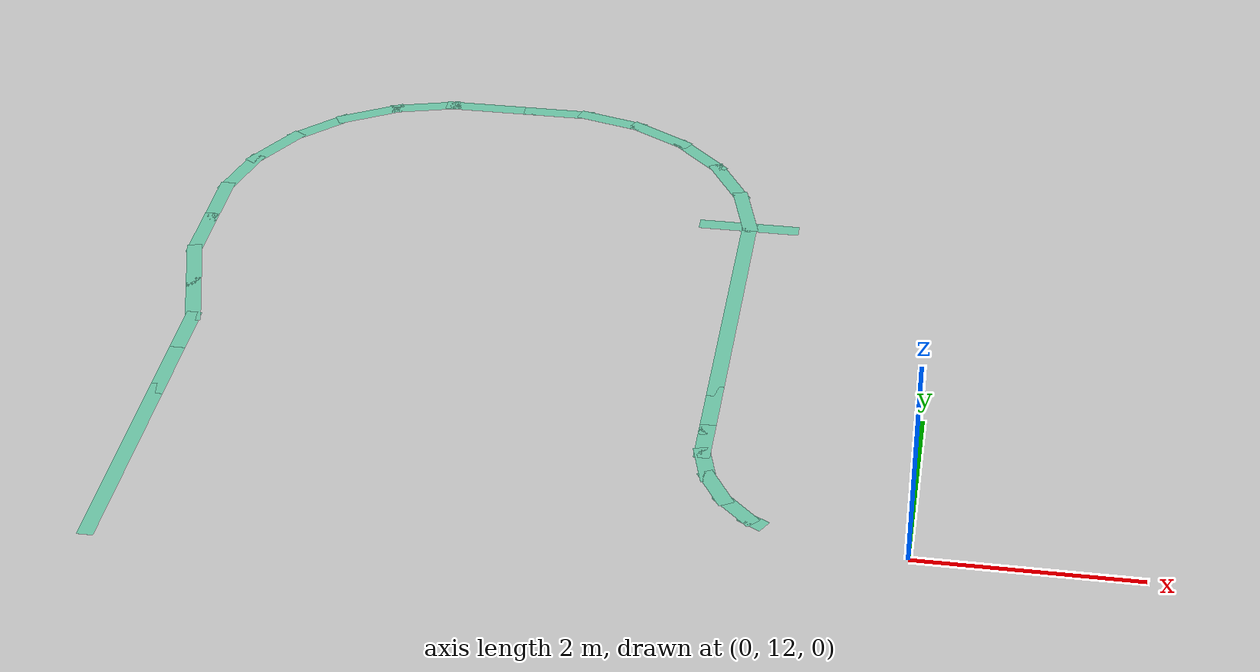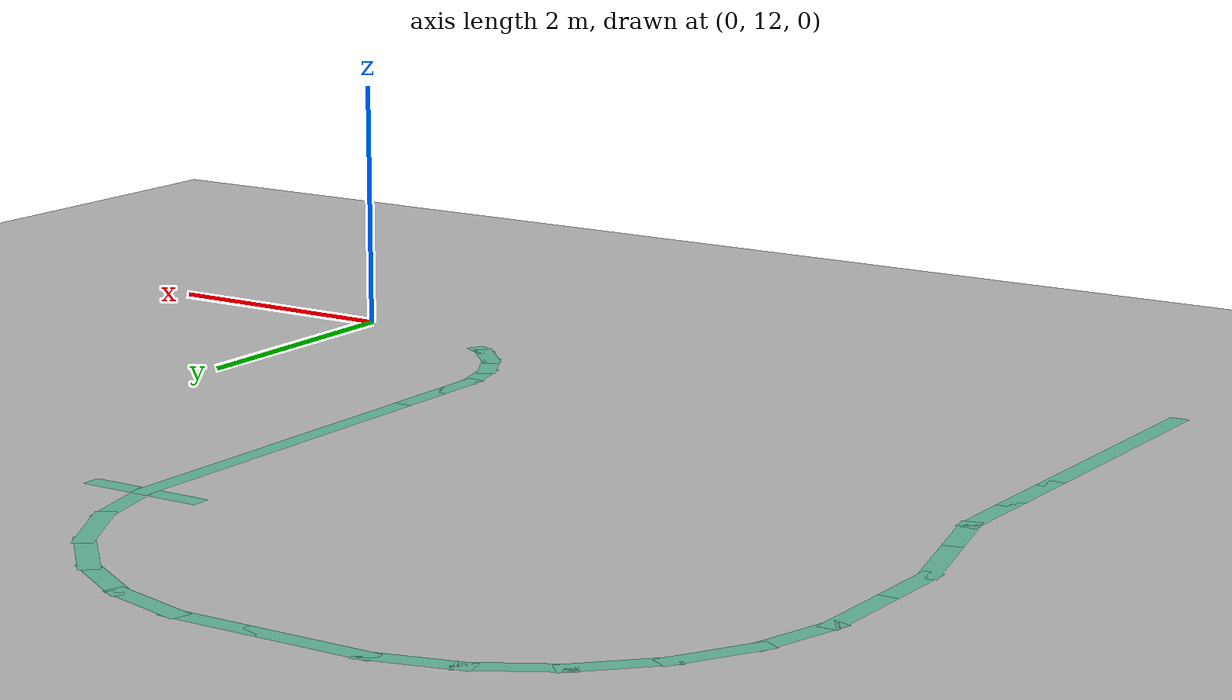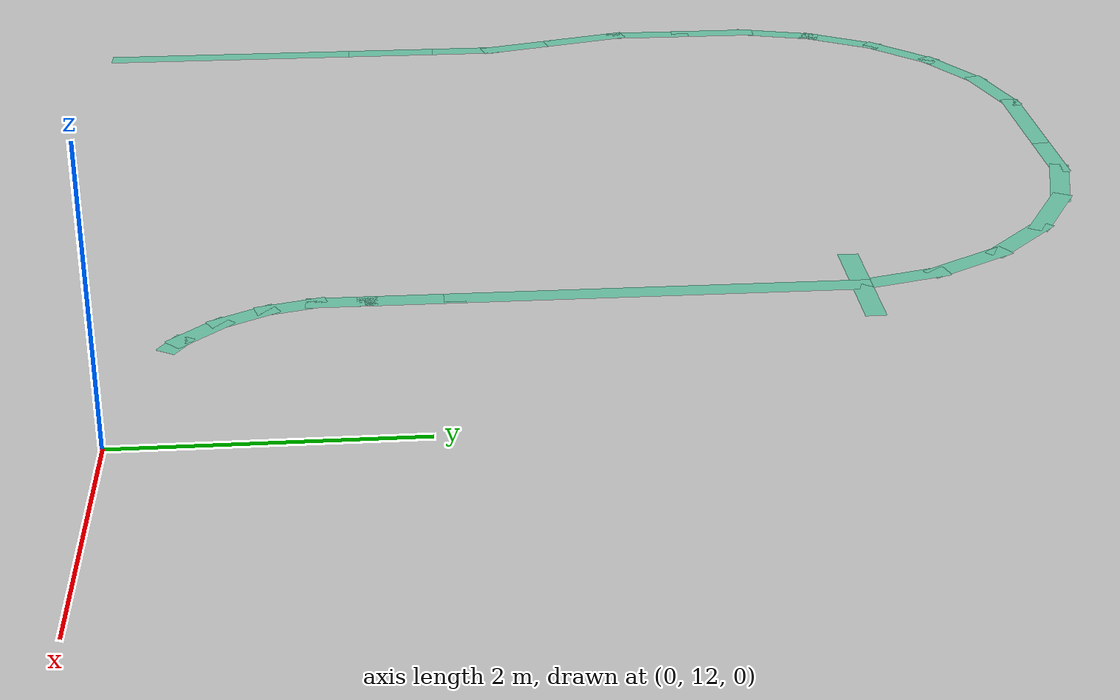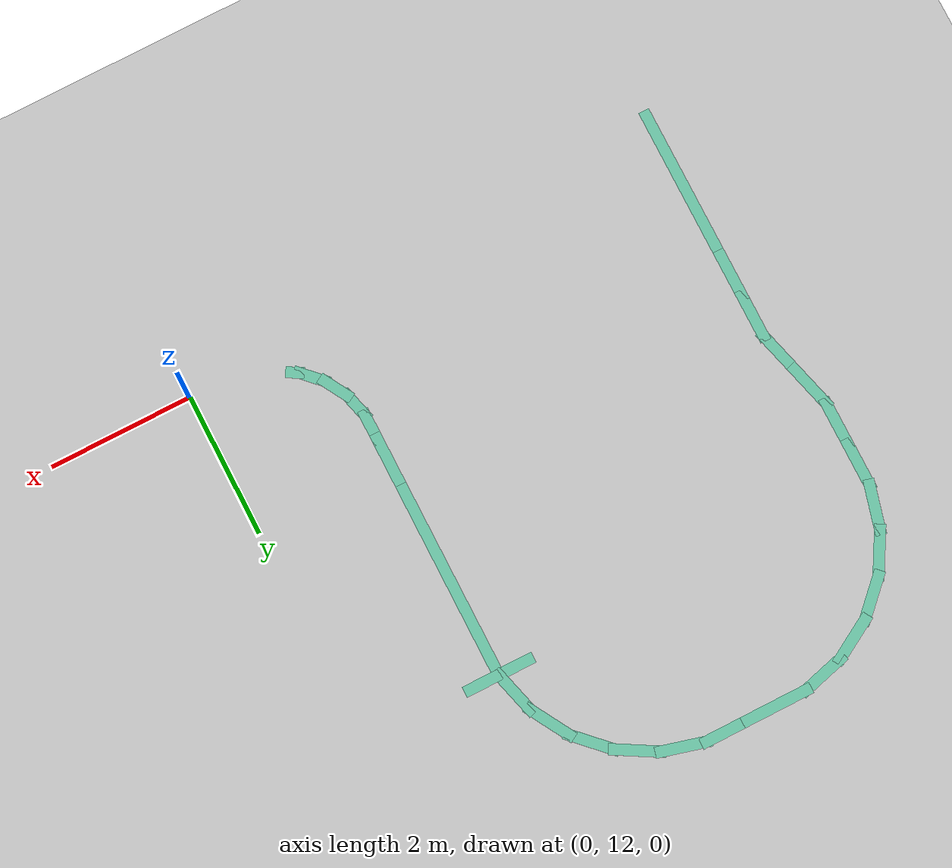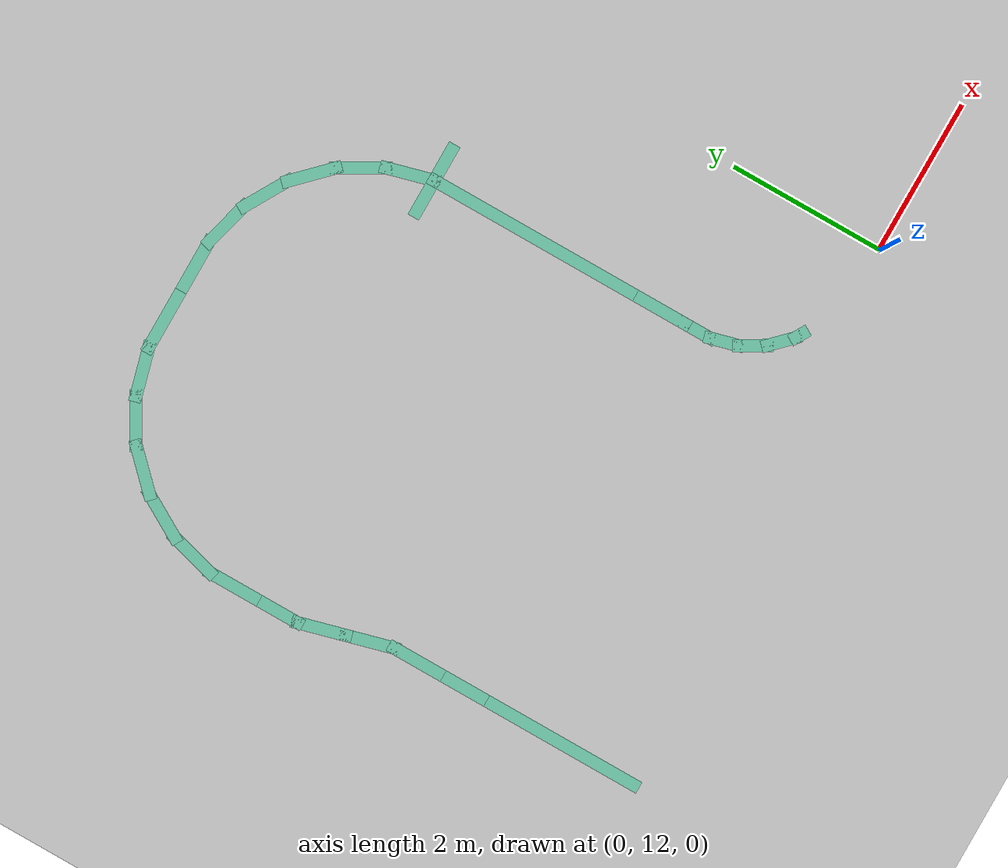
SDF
<sdf version="1.6">
 <world name="default">
  <model name="ground_plane">
   <static>1</static>
   <link name="link">
    <collision name="collision">
     <geometry><plane><normal>0 0 1</normal><size>100 100</size></plane></geometry>
     <surface><friction><ode><mu>100</mu><mu2>50</mu2></ode></friction></surface>
    </collision>
    <visual name="visual">
     <cast_shadows>0</cast_shadows>
     <geometry><plane><normal>0 0 1</normal><size>100 100</size></plane></geometry>
     <material>
      <script><uri>file://media/materials/scripts/gazebo.material</uri><name>Gazebo/Grey</name></script>
     </material>
    </visual>
   </link>
  </model>
  <model name="pomdp_path">
   <link name="Wall_167">
    <pose>-7.13559 -2.82723 0 0 0 -0.523599</pose>
    <visual name="Wall_167_Visual">
     <pose>0 0 0.0001 0 -0 0</pose>
     <geometry><box><size>0.25 0.15 0</size></box></geometry>
     <material>
      <script><uri>file://media/materials/scripts/gazebo.material</uri><name>Gazebo/Grey</name></script>
      <ambient>0.435294 0.796078 0.67451 1</ambient>
      <shader type="pixel"/>
     </material>
     <meta><layer>0</layer></meta>
    </visual>
    <collision name="Wall_167_Collision">
     <pose>0 0 0.0001 0 -0 0</pose>
     <geometry><box><size>0.25 0.15 0</size></box></geometry>
     <surface>
      <friction>
       <ode><mu>1</mu><mu2>1</mu2><fdir1>0 0 0</fdir1><slip1>0</slip1><slip2>0</slip2></ode>
       <torsional>
        <coefficient>1</coefficient>
        <patch_radius>0</patch_radius>
        <surface_radius>0</surface_radius>
        <use_patch_radius>1</use_patch_radius>
        <ode><slip>0</slip></ode>
       </torsional>
      </friction>
      <bounce><restitution_coefficient>0</restitution_coefficient><threshold>1e+06</threshold></bounce>
      <contact>
       <collide_without_contact>0</collide_without_contact>
       <collide_without_contact_bitmask>1</collide_without_contact_bitmask>
       <collide_bitmask>1</collide_bitmask>
       <ode>
        <soft_cfm>0</soft_cfm>
        <soft_erp>0.2</soft_erp>
        <kp>1e+13</kp>
        <kd>1</kd>
        <max_vel>0.01</max_vel>
        <min_depth>0</min_depth>
       </ode>
       <bullet>
        <split_impulse>1</split_impulse>
        <split_impulse_penetration_threshold>-0.01</split_impulse_penetration_threshold>
        <soft_cfm>0</soft_cfm>
        <soft_erp>0.2</soft_erp>
        <kp>1e+13</kp>
        <kd>1</kd>
       </bullet>
      </contact>
     </surface>
    </collision>
   </link>
   <link name="Wall_168">
    <pose>-6.96855 -2.97598 0 0 0 -0.785398</pose>
    <visual name="Wall_168_Visual">
     <pose>0 0 0.0001 0 -0 0</pose>
     <geometry><box><size>0.5 0.15 0</size></box></geometry>
     <material>
      <script><uri>file://media/materials/scripts/gazebo.material</uri><name>Gazebo/Grey</name></script>
      <ambient>0.435294 0.796078 0.67451 1</ambient>
      <shader type="pixel"/>
     </material>
     <meta><layer>0</layer></meta>
    </visual>
    <collision name="Wall_168_Collision">
     <pose>0 0 0.0001 0 -0 0</pose>
     <geometry><box><size>0.5 0.15 0</size></box></geometry>
     <surface>
      <friction>
       <ode><mu>1</mu><mu2>1</mu2><fdir1>0 0 0</fdir1><slip1>0</slip1><slip2>0</slip2></ode>
       <torsional>
        <coefficient>1</coefficient>
        <patch_radius>0</patch_radius>
        <surface_radius>0</surface_radius>
        <use_patch_radius>1</use_patch_radius>
        <ode><slip>0</slip></ode>
       </torsional>
      </friction>
      <bounce><restitution_coefficient>0</restitution_coefficient><threshold>1e+06</threshold></bounce>
      <contact>
       <collide_without_contact>0</collide_without_contact>
       <collide_without_contact_bitmask>1</collide_without_contact_bitmask>
       <collide_bitmask>1</collide_bitmask>
       <ode>
        <soft_cfm>0</soft_cfm>
        <soft_erp>0.2</soft_erp>
        <kp>1e+13</kp>
        <kd>1</kd>
        <max_vel>0.01</max_vel>
        <min_depth>0</min_depth>
       </ode>
       <bullet>
        <split_impulse>1</split_impulse>
        <split_impulse_penetration_threshold>-0.01</split_impulse_penetration_threshold>
        <soft_cfm>0</soft_cfm>
        <soft_erp>0.2</soft_erp>
        <kp>1e+13</kp>
        <kd>1</kd>
       </bullet>
      </contact>
     </surface>
    </collision>
   </link>
   <link name="Wall_169">
    <pose>-6.7573 -3.25127 0 0 0 -1.0472</pose>
    <visual name="Wall_169_Visual">
     <pose>0 0 0.0001 0 -0 0</pose>
     <geometry><box><size>0.5 0.15 0</size></box></geometry>
     <material>
      <script><uri>file://media/materials/scripts/gazebo.material</uri><name>Gazebo/Grey</name></script>
      <ambient>0.435294 0.796078 0.67451 1</ambient>
      <shader type="pixel"/>
     </material>
     <meta><layer>0</layer></meta>
    </visual>
    <collision name="Wall_169_Collision">
     <pose>0 0 0.0001 0 -0 0</pose>
     <geometry><box><size>0.5 0.15 0</size></box></geometry>
     <surface>
      <friction>
       <ode><mu>1</mu><mu2>1</mu2><fdir1>0 0 0</fdir1><slip1>0</slip1><slip2>0</slip2></ode>
       <torsional>
        <coefficient>1</coefficient>
        <patch_radius>0</patch_radius>
        <surface_radius>0</surface_radius>
        <use_patch_radius>1</use_patch_radius>
        <ode><slip>0</slip></ode>
       </torsional>
      </friction>
      <bounce><restitution_coefficient>0</restitution_coefficient><threshold>1e+06</threshold></bounce>
      <contact>
       <collide_without_contact>0</collide_without_contact>
       <collide_without_contact_bitmask>1</collide_without_contact_bitmask>
       <collide_bitmask>1</collide_bitmask>
       <ode>
        <soft_cfm>0</soft_cfm>
        <soft_erp>0.2</soft_erp>
        <kp>1e+13</kp>
        <kd>1</kd>
        <max_vel>0.01</max_vel>
        <min_depth>0</min_depth>
       </ode>
       <bullet>
        <split_impulse>1</split_impulse>
        <split_impulse_penetration_threshold>-0.01</split_impulse_penetration_threshold>
        <soft_cfm>0</soft_cfm>
        <soft_erp>0.2</soft_erp>
        <kp>1e+13</kp>
        <kd>1</kd>
       </bullet>
      </contact>
     </surface>
    </collision>
   </link>
   <link name="Wall_170">
    <pose>-6.62451 -3.57186 0 0 0 -1.309</pose>
    <visual name="Wall_170_Visual">
     <pose>0 0 0.0001 0 -0 0</pose>
     <geometry><box><size>0.5 0.15 0</size></box></geometry>
     <material>
      <script><uri>file://media/materials/scripts/gazebo.material</uri><name>Gazebo/Grey</name></script>
      <ambient>0.435294 0.796078 0.67451 1</ambient>
      <shader type="pixel"/>
     </material>
     <meta><layer>0</layer></meta>
    </visual>
    <collision name="Wall_170_Collision">
     <pose>0 0 0.0001 0 -0 0</pose>
     <geometry><box><size>0.5 0.15 0</size></box></geometry>
     <surface>
      <friction>
       <ode><mu>1</mu><mu2>1</mu2><fdir1>0 0 0</fdir1><slip1>0</slip1><slip2>0</slip2></ode>
       <torsional>
        <coefficient>1</coefficient>
        <patch_radius>0</patch_radius>
        <surface_radius>0</surface_radius>
        <use_patch_radius>1</use_patch_radius>
        <ode><slip>0</slip></ode>
       </torsional>
      </friction>
      <bounce><restitution_coefficient>0</restitution_coefficient><threshold>1e+06</threshold></bounce>
      <contact>
       <collide_without_contact>0</collide_without_contact>
       <collide_without_contact_bitmask>1</collide_without_contact_bitmask>
       <collide_bitmask>1</collide_bitmask>
       <ode>
        <soft_cfm>0</soft_cfm>
        <soft_erp>0.2</soft_erp>
        <kp>1e+13</kp>
        <kd>1</kd>
        <max_vel>0.01</max_vel>
        <min_depth>0</min_depth>
       </ode>
       <bullet>
        <split_impulse>1</split_impulse>
        <split_impulse_penetration_threshold>-0.01</split_impulse_penetration_threshold>
        <soft_cfm>0</soft_cfm>
        <soft_erp>0.2</soft_erp>
        <kp>1e+13</kp>
        <kd>1</kd>
       </bullet>
      </contact>
     </surface>
    </collision>
   </link>
   <link name="Wall_171">
    <pose>-6.57922 -3.9159 0 0 0 -1.5708</pose>
    <visual name="Wall_171_Visual">
     <pose>0 0 0.0001 0 -0 0</pose>
     <geometry><box><size>0.5 0.15 0</size></box></geometry>
     <material>
      <script><uri>file://media/materials/scripts/gazebo.material</uri><name>Gazebo/Grey</name></script>
      <ambient>0.435294 0.796078 0.67451 1</ambient>
      <shader type="pixel"/>
     </material>
     <meta><layer>0</layer></meta>
    </visual>
    <collision name="Wall_171_Collision">
     <pose>0 0 0.0001 0 -0 0</pose>
     <geometry><box><size>0.5 0.15 0</size></box></geometry>
     <surface>
      <friction>
       <ode><mu>1</mu><mu2>1</mu2><fdir1>0 0 0</fdir1><slip1>0</slip1><slip2>0</slip2></ode>
       <torsional>
        <coefficient>1</coefficient>
        <patch_radius>0</patch_radius>
        <surface_radius>0</surface_radius>
        <use_patch_radius>1</use_patch_radius>
        <ode><slip>0</slip></ode>
       </torsional>
      </friction>
      <bounce><restitution_coefficient>0</restitution_coefficient><threshold>1e+06</threshold></bounce>
      <contact>
       <collide_without_contact>0</collide_without_contact>
       <collide_without_contact_bitmask>1</collide_without_contact_bitmask>
       <collide_bitmask>1</collide_bitmask>
       <ode>
        <soft_cfm>0</soft_cfm>
        <soft_erp>0.2</soft_erp>
        <kp>1e+13</kp>
        <kd>1</kd>
        <max_vel>0.01</max_vel>
        <min_depth>0</min_depth>
       </ode>
       <bullet>
        <split_impulse>1</split_impulse>
        <split_impulse_penetration_threshold>-0.01</split_impulse_penetration_threshold>
        <soft_cfm>0</soft_cfm>
        <soft_erp>0.2</soft_erp>
        <kp>1e+13</kp>
        <kd>1</kd>
       </bullet>
      </contact>
     </surface>
    </collision>
   </link>
   <link name="Wall_172">
    <pose>-6.57922 -4.3909 0 0 0 -1.5708</pose>
    <visual name="Wall_172_Visual">
     <pose>0 0 0.0001 0 -0 0</pose>
     <geometry><box><size>0.75 0.15 0</size></box></geometry>
     <material>
      <script><uri>file://media/materials/scripts/gazebo.material</uri><name>Gazebo/Grey</name></script>
      <ambient>0.435294 0.796078 0.67451 1</ambient>
      <shader type="pixel"/>
     </material>
     <meta><layer>0</layer></meta>
    </visual>
    <collision name="Wall_172_Collision">
     <pose>0 0 0.0001 0 -0 0</pose>
     <geometry><box><size>0.75 0.15 0</size></box></geometry>
     <surface>
      <friction>
       <ode><mu>1</mu><mu2>1</mu2><fdir1>0 0 0</fdir1><slip1>0</slip1><slip2>0</slip2></ode>
       <torsional>
        <coefficient>1</coefficient>
        <patch_radius>0</patch_radius>
        <surface_radius>0</surface_radius>
        <use_patch_radius>1</use_patch_radius>
        <ode><slip>0</slip></ode>
       </torsional>
      </friction>
      <bounce><restitution_coefficient>0</restitution_coefficient><threshold>1e+06</threshold></bounce>
      <contact>
       <collide_without_contact>0</collide_without_contact>
       <collide_without_contact_bitmask>1</collide_without_contact_bitmask>
       <collide_bitmask>1</collide_bitmask>
       <ode>
        <soft_cfm>0</soft_cfm>
        <soft_erp>0.2</soft_erp>
        <kp>1e+13</kp>
        <kd>1</kd>
        <max_vel>0.01</max_vel>
        <min_depth>0</min_depth>
       </ode>
       <bullet>
        <split_impulse>1</split_impulse>
        <split_impulse_penetration_threshold>-0.01</split_impulse_penetration_threshold>
        <soft_cfm>0</soft_cfm>
        <soft_erp>0.2</soft_erp>
        <kp>1e+13</kp>
        <kd>1</kd>
       </bullet>
      </contact>
     </surface>
    </collision>
   </link>
   <link name="Wall_176">
    <pose>-6.57922 -6.1159 0 0 0 -1.5708</pose>
    <visual name="Wall_176_Visual">
     <pose>0 0 0.0001 0 -0 0</pose>
     <geometry><box><size>3 0.15 0</size></box></geometry>
     <material>
      <script><uri>file://media/materials/scripts/gazebo.material</uri><name>Gazebo/Grey</name></script>
      <ambient>0.435294 0.796078 0.67451 1</ambient>
      <shader type="pixel"/>
     </material>
     <meta><layer>0</layer></meta>
    </visual>
    <collision name="Wall_176_Collision">
     <pose>0 0 0.0001 0 -0 0</pose>
     <geometry><box><size>3 0.15 0</size></box></geometry>
     <surface>
      <friction>
       <ode><mu>1</mu><mu2>1</mu2><fdir1>0 0 0</fdir1><slip1>0</slip1><slip2>0</slip2></ode>
       <torsional>
        <coefficient>1</coefficient>
        <patch_radius>0</patch_radius>
        <surface_radius>0</surface_radius>
        <use_patch_radius>1</use_patch_radius>
        <ode><slip>0</slip></ode>
       </torsional>
      </friction>
      <bounce><restitution_coefficient>0</restitution_coefficient><threshold>1e+06</threshold></bounce>
      <contact>
       <collide_without_contact>0</collide_without_contact>
       <collide_without_contact_bitmask>1</collide_without_contact_bitmask>
       <collide_bitmask>1</collide_bitmask>
       <ode>
        <soft_cfm>0</soft_cfm>
        <soft_erp>0.2</soft_erp>
        <kp>1e+13</kp>
        <kd>1</kd>
        <max_vel>0.01</max_vel>
        <min_depth>0</min_depth>
       </ode>
       <bullet>
        <split_impulse>1</split_impulse>
        <split_impulse_penetration_threshold>-0.01</split_impulse_penetration_threshold>
        <soft_cfm>0</soft_cfm>
        <soft_erp>0.2</soft_erp>
        <kp>1e+13</kp>
        <kd>1</kd>
       </bullet>
      </contact>
     </surface>
    </collision>
   </link>
   <link name="Wall_177">
    <pose>-6.50157 -7.83068 0 0 0 -1.309</pose>
    <visual name="Wall_177_Visual">
     <pose>0 0 0.0001 0 -0 0</pose>
     <geometry><box><size>0.75 0.15 0</size></box></geometry>
     <material>
      <script><uri>file://media/materials/scripts/gazebo.material</uri><name>Gazebo/Grey</name></script>
      <ambient>0.435294 0.796078 0.67451 1</ambient>
      <shader type="pixel"/>
     </material>
     <meta><layer>0</layer></meta>
    </visual>
    <collision name="Wall_177_Collision">
     <pose>0 0 0.0001 0 -0 0</pose>
     <geometry><box><size>0.75 0.15 0</size></box></geometry>
     <surface>
      <friction>
       <ode><mu>1</mu><mu2>1</mu2><fdir1>0 0 0</fdir1><slip1>0</slip1><slip2>0</slip2></ode>
       <torsional>
        <coefficient>1</coefficient>
        <patch_radius>0</patch_radius>
        <surface_radius>0</surface_radius>
        <use_patch_radius>1</use_patch_radius>
        <ode><slip>0</slip></ode>
       </torsional>
      </friction>
      <bounce><restitution_coefficient>0</restitution_coefficient><threshold>1e+06</threshold></bounce>
      <contact>
       <collide_without_contact>0</collide_without_contact>
       <collide_without_contact_bitmask>1</collide_without_contact_bitmask>
       <collide_bitmask>1</collide_bitmask>
       <ode>
        <soft_cfm>0</soft_cfm>
        <soft_erp>0.2</soft_erp>
        <kp>1e+13</kp>
        <kd>1</kd>
        <max_vel>0.01</max_vel>
        <min_depth>0</min_depth>
       </ode>
       <bullet>
        <split_impulse>1</split_impulse>
        <split_impulse_penetration_threshold>-0.01</split_impulse_penetration_threshold>
        <soft_cfm>0</soft_cfm>
        <soft_erp>0.2</soft_erp>
        <kp>1e+13</kp>
        <kd>1</kd>
       </bullet>
      </contact>
     </surface>
    </collision>
   </link>
   <link name="Wall_178">
    <pose>-6.27392 -8.38026 0 0 0 -1.0472</pose>
    <visual name="Wall_178_Visual">
     <pose>0 0 0.0001 0 -0 0</pose>
     <geometry><box><size>0.75 0.15 0</size></box></geometry>
     <material>
      <script><uri>file://media/materials/scripts/gazebo.material</uri><name>Gazebo/Grey</name></script>
      <ambient>0.435294 0.796078 0.67451 1</ambient>
      <shader type="pixel"/>
     </material>
     <meta><layer>0</layer></meta>
    </visual>
    <collision name="Wall_178_Collision">
     <pose>0 0 0.0001 0 -0 0</pose>
     <geometry><box><size>0.75 0.15 0</size></box></geometry>
     <surface>
      <friction>
       <ode><mu>1</mu><mu2>1</mu2><fdir1>0 0 0</fdir1><slip1>0</slip1><slip2>0</slip2></ode>
       <torsional>
        <coefficient>1</coefficient>
        <patch_radius>0</patch_radius>
        <surface_radius>0</surface_radius>
        <use_patch_radius>1</use_patch_radius>
        <ode><slip>0</slip></ode>
       </torsional>
      </friction>
      <bounce><restitution_coefficient>0</restitution_coefficient><threshold>1e+06</threshold></bounce>
      <contact>
       <collide_without_contact>0</collide_without_contact>
       <collide_without_contact_bitmask>1</collide_without_contact_bitmask>
       <collide_bitmask>1</collide_bitmask>
       <ode>
        <soft_cfm>0</soft_cfm>
        <soft_erp>0.2</soft_erp>
        <kp>1e+13</kp>
        <kd>1</kd>
        <max_vel>0.01</max_vel>
        <min_depth>0</min_depth>
       </ode>
       <bullet>
        <split_impulse>1</split_impulse>
        <split_impulse_penetration_threshold>-0.01</split_impulse_penetration_threshold>
        <soft_cfm>0</soft_cfm>
        <soft_erp>0.2</soft_erp>
        <kp>1e+13</kp>
        <kd>1</kd>
       </bullet>
      </contact>
     </surface>
    </collision>
   </link>
   <link name="Wall_179">
    <pose>-5.91179 -8.8522 0 0 0 -0.785398</pose>
    <visual name="Wall_179_Visual">
     <pose>0 0 0.0001 0 -0 0</pose>
     <geometry><box><size>0.75 0.15 0</size></box></geometry>
     <material>
      <script><uri>file://media/materials/scripts/gazebo.material</uri><name>Gazebo/Grey</name></script>
      <ambient>0.435294 0.796078 0.67451 1</ambient>
      <shader type="pixel"/>
     </material>
     <meta><layer>0</layer></meta>
    </visual>
    <collision name="Wall_179_Collision">
     <pose>0 0 0.0001 0 -0 0</pose>
     <geometry><box><size>0.75 0.15 0</size></box></geometry>
     <surface>
      <friction>
       <ode><mu>1</mu><mu2>1</mu2><fdir1>0 0 0</fdir1><slip1>0</slip1><slip2>0</slip2></ode>
       <torsional>
        <coefficient>1</coefficient>
        <patch_radius>0</patch_radius>
        <surface_radius>0</surface_radius>
        <use_patch_radius>1</use_patch_radius>
        <ode><slip>0</slip></ode>
       </torsional>
      </friction>
      <bounce><restitution_coefficient>0</restitution_coefficient><threshold>1e+06</threshold></bounce>
      <contact>
       <collide_without_contact>0</collide_without_contact>
       <collide_without_contact_bitmask>1</collide_without_contact_bitmask>
       <collide_bitmask>1</collide_bitmask>
       <ode>
        <soft_cfm>0</soft_cfm>
        <soft_erp>0.2</soft_erp>
        <kp>1e+13</kp>
        <kd>1</kd>
        <max_vel>0.01</max_vel>
        <min_depth>0</min_depth>
       </ode>
       <bullet>
        <split_impulse>1</split_impulse>
        <split_impulse_penetration_threshold>-0.01</split_impulse_penetration_threshold>
        <soft_cfm>0</soft_cfm>
        <soft_erp>0.2</soft_erp>
        <kp>1e+13</kp>
        <kd>1</kd>
       </bullet>
      </contact>
     </surface>
    </collision>
   </link>
   <link name="Wall_180">
    <pose>-5.43985 -9.21434 0 0 0 -0.523599</pose>
    <visual name="Wall_180_Visual">
     <pose>0 0 0.0001 0 -0 0</pose>
     <geometry><box><size>0.75 0.15 0</size></box></geometry>
     <material>
      <script><uri>file://media/materials/scripts/gazebo.material</uri><name>Gazebo/Grey</name></script>
      <ambient>0.435294 0.796078 0.67451 1</ambient>
      <shader type="pixel"/>
     </material>
     <meta><layer>0</layer></meta>
    </visual>
    <collision name="Wall_180_Collision">
     <pose>0 0 0.0001 0 -0 0</pose>
     <geometry><box><size>0.75 0.15 0</size></box></geometry>
     <surface>
      <friction>
       <ode><mu>1</mu><mu2>1</mu2><fdir1>0 0 0</fdir1><slip1>0</slip1><slip2>0</slip2></ode>
       <torsional>
        <coefficient>1</coefficient>
        <patch_radius>0</patch_radius>
        <surface_radius>0</surface_radius>
        <use_patch_radius>1</use_patch_radius>
        <ode><slip>0</slip></ode>
       </torsional>
      </friction>
      <bounce><restitution_coefficient>0</restitution_coefficient><threshold>1e+06</threshold></bounce>
      <contact>
       <collide_without_contact>0</collide_without_contact>
       <collide_without_contact_bitmask>1</collide_without_contact_bitmask>
       <collide_bitmask>1</collide_bitmask>
       <ode>
        <soft_cfm>0</soft_cfm>
        <soft_erp>0.2</soft_erp>
        <kp>1e+13</kp>
        <kd>1</kd>
        <max_vel>0.01</max_vel>
        <min_depth>0</min_depth>
       </ode>
       <bullet>
        <split_impulse>1</split_impulse>
        <split_impulse_penetration_threshold>-0.01</split_impulse_penetration_threshold>
        <soft_cfm>0</soft_cfm>
        <soft_erp>0.2</soft_erp>
        <kp>1e+13</kp>
        <kd>1</kd>
       </bullet>
      </contact>
     </surface>
    </collision>
   </link>
   <link name="Wall_181">
    <pose>-4.89027 -9.44198 0 0 0 -0.261799</pose>
    <visual name="Wall_181_Visual">
     <pose>0 0 0.0001 0 -0 0</pose>
     <geometry><box><size>0.75 0.15 0</size></box></geometry>
     <material>
      <script><uri>file://media/materials/scripts/gazebo.material</uri><name>Gazebo/Grey</name></script>
      <ambient>0.435294 0.796078 0.67451 1</ambient>
      <shader type="pixel"/>
     </material>
     <meta><layer>0</layer></meta>
    </visual>
    <collision name="Wall_181_Collision">
     <pose>0 0 0.0001 0 -0 0</pose>
     <geometry><box><size>0.75 0.15 0</size></box></geometry>
     <surface>
      <friction>
       <ode><mu>1</mu><mu2>1</mu2><fdir1>0 0 0</fdir1><slip1>0</slip1><slip2>0</slip2></ode>
       <torsional>
        <coefficient>1</coefficient>
        <patch_radius>0</patch_radius>
        <surface_radius>0</surface_radius>
        <use_patch_radius>1</use_patch_radius>
        <ode><slip>0</slip></ode>
       </torsional>
      </friction>
      <bounce><restitution_coefficient>0</restitution_coefficient><threshold>1e+06</threshold></bounce>
      <contact>
       <collide_without_contact>0</collide_without_contact>
       <collide_without_contact_bitmask>1</collide_without_contact_bitmask>
       <collide_bitmask>1</collide_bitmask>
       <ode>
        <soft_cfm>0</soft_cfm>
        <soft_erp>0.2</soft_erp>
        <kp>1e+13</kp>
        <kd>1</kd>
        <max_vel>0.01</max_vel>
        <min_depth>0</min_depth>
       </ode>
       <bullet>
        <split_impulse>1</split_impulse>
        <split_impulse_penetration_threshold>-0.01</split_impulse_penetration_threshold>
        <soft_cfm>0</soft_cfm>
        <soft_erp>0.2</soft_erp>
        <kp>1e+13</kp>
        <kd>1</kd>
       </bullet>
      </contact>
     </surface>
    </collision>
   </link>
   <link name="Wall_182">
    <pose>-4.30049 -9.51963 0 0 -0 0</pose>
    <visual name="Wall_182_Visual">
     <pose>0 0 0.0001 0 -0 0</pose>
     <geometry><box><size>0.75 0.15 0</size></box></geometry>
     <material>
      <script><uri>file://media/materials/scripts/gazebo.material</uri><name>Gazebo/Grey</name></script>
      <ambient>0.435294 0.796078 0.67451 1</ambient>
      <shader type="pixel"/>
     </material>
     <meta><layer>0</layer></meta>
    </visual>
    <collision name="Wall_182_Collision">
     <pose>0 0 0.0001 0 -0 0</pose>
     <geometry><box><size>0.75 0.15 0</size></box></geometry>
     <surface>
      <friction>
       <ode><mu>1</mu><mu2>1</mu2><fdir1>0 0 0</fdir1><slip1>0</slip1><slip2>0</slip2></ode>
       <torsional>
        <coefficient>1</coefficient>
        <patch_radius>0</patch_radius>
        <surface_radius>0</surface_radius>
        <use_patch_radius>1</use_patch_radius>
        <ode><slip>0</slip></ode>
       </torsional>
      </friction>
      <bounce><restitution_coefficient>0</restitution_coefficient><threshold>1e+06</threshold></bounce>
      <contact>
       <collide_without_contact>0</collide_without_contact>
       <collide_without_contact_bitmask>1</collide_without_contact_bitmask>
       <collide_bitmask>1</collide_bitmask>
       <ode>
        <soft_cfm>0</soft_cfm>
        <soft_erp>0.2</soft_erp>
        <kp>1e+13</kp>
        <kd>1</kd>
        <max_vel>0.01</max_vel>
        <min_depth>0</min_depth>
       </ode>
       <bullet>
        <split_impulse>1</split_impulse>
        <split_impulse_penetration_threshold>-0.01</split_impulse_penetration_threshold>
        <soft_cfm>0</soft_cfm>
        <soft_erp>0.2</soft_erp>
        <kp>1e+13</kp>
        <kd>1</kd>
       </bullet>
      </contact>
     </surface>
    </collision>
   </link>
   <link name="Wall_183">
    <pose>-3.57549 -9.51963 0 0 -0 0</pose>
    <visual name="Wall_183_Visual">
     <pose>0 0 0.0001 0 -0 0</pose>
     <geometry><box><size>1 0.15 0</size></box></geometry>
     <material>
      <script><uri>file://media/materials/scripts/gazebo.material</uri><name>Gazebo/Grey</name></script>
      <ambient>0.435294 0.796078 0.67451 1</ambient>
      <shader type="pixel"/>
     </material>
     <meta><layer>0</layer></meta>
    </visual>
    <collision name="Wall_183_Collision">
     <pose>0 0 0.0001 0 -0 0</pose>
     <geometry><box><size>1 0.15 0</size></box></geometry>
     <surface>
      <friction>
       <ode><mu>1</mu><mu2>1</mu2><fdir1>0 0 0</fdir1><slip1>0</slip1><slip2>0</slip2></ode>
       <torsional>
        <coefficient>1</coefficient>
        <patch_radius>0</patch_radius>
        <surface_radius>0</surface_radius>
        <use_patch_radius>1</use_patch_radius>
        <ode><slip>0</slip></ode>
       </torsional>
      </friction>
      <bounce><restitution_coefficient>0</restitution_coefficient><threshold>1e+06</threshold></bounce>
      <contact>
       <collide_without_contact>0</collide_without_contact>
       <collide_without_contact_bitmask>1</collide_without_contact_bitmask>
       <collide_bitmask>1</collide_bitmask>
       <ode>
        <soft_cfm>0</soft_cfm>
        <soft_erp>0.2</soft_erp>
        <kp>1e+13</kp>
        <kd>1</kd>
        <max_vel>0.01</max_vel>
        <min_depth>0</min_depth>
       </ode>
       <bullet>
        <split_impulse>1</split_impulse>
        <split_impulse_penetration_threshold>-0.01</split_impulse_penetration_threshold>
        <soft_cfm>0</soft_cfm>
        <soft_erp>0.2</soft_erp>
        <kp>1e+13</kp>
        <kd>1</kd>
       </bullet>
      </contact>
     </surface>
    </collision>
   </link>
   <link name="Wall_183_clone">
    <pose>-6.57342 -7.5414 0 0 0 -3.14159</pose>
    <visual name="Wall_183_Visual">
     <pose>0 0 0.0001 0 -0 0</pose>
     <geometry><box><size>1 0.15 0</size></box></geometry>
     <material>
      <script><uri>file://media/materials/scripts/gazebo.material</uri><name>Gazebo/Grey</name></script>
      <ambient>0.435294 0.796078 0.67451 1</ambient>
      <shader type="pixel"/>
     </material>
     <meta><layer>0</layer></meta>
    </visual>
    <collision name="Wall_183_Collision">
     <pose>0 0 0.0001 0 -0 0</pose>
     <geometry><box><size>1 0.15 0</size></box></geometry>
     <surface>
      <friction>
       <ode><mu>1</mu><mu2>1</mu2><fdir1>0 0 0</fdir1><slip1>0</slip1><slip2>0</slip2></ode>
       <torsional>
        <coefficient>1</coefficient>
        <patch_radius>0</patch_radius>
        <surface_radius>0</surface_radius>
        <use_patch_radius>1</use_patch_radius>
        <ode><slip>0</slip></ode>
       </torsional>
      </friction>
      <bounce><restitution_coefficient>0</restitution_coefficient><threshold>1e+06</threshold></bounce>
      <contact>
       <collide_without_contact>0</collide_without_contact>
       <collide_without_contact_bitmask>1</collide_without_contact_bitmask>
       <collide_bitmask>1</collide_bitmask>
       <ode>
        <soft_cfm>0</soft_cfm>
        <soft_erp>0.2</soft_erp>
        <kp>1e+13</kp>
        <kd>1</kd>
        <max_vel>0.01</max_vel>
        <min_depth>0</min_depth>
       </ode>
       <bullet>
        <split_impulse>1</split_impulse>
        <split_impulse_penetration_threshold>-0.01</split_impulse_penetration_threshold>
        <soft_cfm>0</soft_cfm>
        <soft_erp>0.2</soft_erp>
        <kp>1e+13</kp>
        <kd>1</kd>
       </bullet>
      </contact>
     </surface>
    </collision>
   </link>
   <link name="Wall_184">
    <pose>-2.86071 -9.44198 0 0 -0 0.261799</pose>
    <visual name="Wall_184_Visual">
     <pose>0 0 0.0001 0 -0 0</pose>
     <geometry><box><size>0.75 0.15 0</size></box></geometry>
     <material>
      <script><uri>file://media/materials/scripts/gazebo.material</uri><name>Gazebo/Grey</name></script>
      <ambient>0.435294 0.796078 0.67451 1</ambient>
      <shader type="pixel"/>
     </material>
     <meta><layer>0</layer></meta>
    </visual>
    <collision name="Wall_184_Collision">
     <pose>0 0 0.0001 0 -0 0</pose>
     <geometry><box><size>0.75 0.15 0</size></box></geometry>
     <surface>
      <friction>
       <ode><mu>1</mu><mu2>1</mu2><fdir1>0 0 0</fdir1><slip1>0</slip1><slip2>0</slip2></ode>
       <torsional>
        <coefficient>1</coefficient>
        <patch_radius>0</patch_radius>
        <surface_radius>0</surface_radius>
        <use_patch_radius>1</use_patch_radius>
        <ode><slip>0</slip></ode>
       </torsional>
      </friction>
      <bounce><restitution_coefficient>0</restitution_coefficient><threshold>1e+06</threshold></bounce>
      <contact>
       <collide_without_contact>0</collide_without_contact>
       <collide_without_contact_bitmask>1</collide_without_contact_bitmask>
       <collide_bitmask>1</collide_bitmask>
       <ode>
        <soft_cfm>0</soft_cfm>
        <soft_erp>0.2</soft_erp>
        <kp>1e+13</kp>
        <kd>1</kd>
        <max_vel>0.01</max_vel>
        <min_depth>0</min_depth>
       </ode>
       <bullet>
        <split_impulse>1</split_impulse>
        <split_impulse_penetration_threshold>-0.01</split_impulse_penetration_threshold>
        <soft_cfm>0</soft_cfm>
        <soft_erp>0.2</soft_erp>
        <kp>1e+13</kp>
        <kd>1</kd>
       </bullet>
      </contact>
     </surface>
    </collision>
   </link>
   <link name="Wall_185">
    <pose>-2.31113 -9.21434 0 0 -0 0.523599</pose>
    <visual name="Wall_185_Visual">
     <pose>0 0 0.0001 0 -0 0</pose>
     <geometry><box><size>0.75 0.15 0</size></box></geometry>
     <material>
      <script><uri>file://media/materials/scripts/gazebo.material</uri><name>Gazebo/Grey</name></script>
      <ambient>0.435294 0.796078 0.67451 1</ambient>
      <shader type="pixel"/>
     </material>
     <meta><layer>0</layer></meta>
    </visual>
    <collision name="Wall_185_Collision">
     <pose>0 0 0.0001 0 -0 0</pose>
     <geometry><box><size>0.75 0.15 0</size></box></geometry>
     <surface>
      <friction>
       <ode><mu>1</mu><mu2>1</mu2><fdir1>0 0 0</fdir1><slip1>0</slip1><slip2>0</slip2></ode>
       <torsional>
        <coefficient>1</coefficient>
        <patch_radius>0</patch_radius>
        <surface_radius>0</surface_radius>
        <use_patch_radius>1</use_patch_radius>
        <ode><slip>0</slip></ode>
       </torsional>
      </friction>
      <bounce><restitution_coefficient>0</restitution_coefficient><threshold>1e+06</threshold></bounce>
      <contact>
       <collide_without_contact>0</collide_without_contact>
       <collide_without_contact_bitmask>1</collide_without_contact_bitmask>
       <collide_bitmask>1</collide_bitmask>
       <ode>
        <soft_cfm>0</soft_cfm>
        <soft_erp>0.2</soft_erp>
        <kp>1e+13</kp>
        <kd>1</kd>
        <max_vel>0.01</max_vel>
        <min_depth>0</min_depth>
       </ode>
       <bullet>
        <split_impulse>1</split_impulse>
        <split_impulse_penetration_threshold>-0.01</split_impulse_penetration_threshold>
        <soft_cfm>0</soft_cfm>
        <soft_erp>0.2</soft_erp>
        <kp>1e+13</kp>
        <kd>1</kd>
       </bullet>
      </contact>
     </surface>
    </collision>
   </link>
   <link name="Wall_186">
    <pose>-1.83919 -8.8522 0 0 -0 0.785398</pose>
    <visual name="Wall_186_Visual">
     <pose>0 0 0.0001 0 -0 0</pose>
     <geometry><box><size>0.75 0.15 0</size></box></geometry>
     <material>
      <script><uri>file://media/materials/scripts/gazebo.material</uri><name>Gazebo/Grey</name></script>
      <ambient>0.435294 0.796078 0.67451 1</ambient>
      <shader type="pixel"/>
     </material>
     <meta><layer>0</layer></meta>
    </visual>
    <collision name="Wall_186_Collision">
     <pose>0 0 0.0001 0 -0 0</pose>
     <geometry><box><size>0.75 0.15 0</size></box></geometry>
     <surface>
      <friction>
       <ode><mu>1</mu><mu2>1</mu2><fdir1>0 0 0</fdir1><slip1>0</slip1><slip2>0</slip2></ode>
       <torsional>
        <coefficient>1</coefficient>
        <patch_radius>0</patch_radius>
        <surface_radius>0</surface_radius>
        <use_patch_radius>1</use_patch_radius>
        <ode><slip>0</slip></ode>
       </torsional>
      </friction>
      <bounce><restitution_coefficient>0</restitution_coefficient><threshold>1e+06</threshold></bounce>
      <contact>
       <collide_without_contact>0</collide_without_contact>
       <collide_without_contact_bitmask>1</collide_without_contact_bitmask>
       <collide_bitmask>1</collide_bitmask>
       <ode>
        <soft_cfm>0</soft_cfm>
        <soft_erp>0.2</soft_erp>
        <kp>1e+13</kp>
        <kd>1</kd>
        <max_vel>0.01</max_vel>
        <min_depth>0</min_depth>
       </ode>
       <bullet>
        <split_impulse>1</split_impulse>
        <split_impulse_penetration_threshold>-0.01</split_impulse_penetration_threshold>
        <soft_cfm>0</soft_cfm>
        <soft_erp>0.2</soft_erp>
        <kp>1e+13</kp>
        <kd>1</kd>
       </bullet>
      </contact>
     </surface>
    </collision>
   </link>
   <link name="Wall_187">
    <pose>-1.47706 -8.38026 0 0 -0 1.0472</pose>
    <visual name="Wall_187_Visual">
     <pose>0 0 0.0001 0 -0 0</pose>
     <geometry><box><size>0.75 0.15 0</size></box></geometry>
     <material>
      <script><uri>file://media/materials/scripts/gazebo.material</uri><name>Gazebo/Grey</name></script>
      <ambient>0.435294 0.796078 0.67451 1</ambient>
      <shader type="pixel"/>
     </material>
     <meta><layer>0</layer></meta>
    </visual>
    <collision name="Wall_187_Collision">
     <pose>0 0 0.0001 0 -0 0</pose>
     <geometry><box><size>0.75 0.15 0</size></box></geometry>
     <surface>
      <friction>
       <ode><mu>1</mu><mu2>1</mu2><fdir1>0 0 0</fdir1><slip1>0</slip1><slip2>0</slip2></ode>
       <torsional>
        <coefficient>1</coefficient>
        <patch_radius>0</patch_radius>
        <surface_radius>0</surface_radius>
        <use_patch_radius>1</use_patch_radius>
        <ode><slip>0</slip></ode>
       </torsional>
      </friction>
      <bounce><restitution_coefficient>0</restitution_coefficient><threshold>1e+06</threshold></bounce>
      <contact>
       <collide_without_contact>0</collide_without_contact>
       <collide_without_contact_bitmask>1</collide_without_contact_bitmask>
       <collide_bitmask>1</collide_bitmask>
       <ode>
        <soft_cfm>0</soft_cfm>
        <soft_erp>0.2</soft_erp>
        <kp>1e+13</kp>
        <kd>1</kd>
        <max_vel>0.01</max_vel>
        <min_depth>0</min_depth>
       </ode>
       <bullet>
        <split_impulse>1</split_impulse>
        <split_impulse_penetration_threshold>-0.01</split_impulse_penetration_threshold>
        <soft_cfm>0</soft_cfm>
        <soft_erp>0.2</soft_erp>
        <kp>1e+13</kp>
        <kd>1</kd>
       </bullet>
      </contact>
     </surface>
    </collision>
   </link>
   <link name="Wall_188">
    <pose>-1.24941 -7.83068 0 0 -0 1.309</pose>
    <visual name="Wall_188_Visual">
     <pose>0 0 0.0001 0 -0 0</pose>
     <geometry><box><size>0.75 0.15 0</size></box></geometry>
     <material>
      <script><uri>file://media/materials/scripts/gazebo.material</uri><name>Gazebo/Grey</name></script>
      <ambient>0.435294 0.796078 0.67451 1</ambient>
      <shader type="pixel"/>
     </material>
     <meta><layer>0</layer></meta>
    </visual>
    <collision name="Wall_188_Collision">
     <pose>0 0 0.0001 0 -0 0</pose>
     <geometry><box><size>0.75 0.15 0</size></box></geometry>
     <surface>
      <friction>
       <ode><mu>1</mu><mu2>1</mu2><fdir1>0 0 0</fdir1><slip1>0</slip1><slip2>0</slip2></ode>
       <torsional>
        <coefficient>1</coefficient>
        <patch_radius>0</patch_radius>
        <surface_radius>0</surface_radius>
        <use_patch_radius>1</use_patch_radius>
        <ode><slip>0</slip></ode>
       </torsional>
      </friction>
      <bounce><restitution_coefficient>0</restitution_coefficient><threshold>1e+06</threshold></bounce>
      <contact>
       <collide_without_contact>0</collide_without_contact>
       <collide_without_contact_bitmask>1</collide_without_contact_bitmask>
       <collide_bitmask>1</collide_bitmask>
       <ode>
        <soft_cfm>0</soft_cfm>
        <soft_erp>0.2</soft_erp>
        <kp>1e+13</kp>
        <kd>1</kd>
        <max_vel>0.01</max_vel>
        <min_depth>0</min_depth>
       </ode>
       <bullet>
        <split_impulse>1</split_impulse>
        <split_impulse_penetration_threshold>-0.01</split_impulse_penetration_threshold>
        <soft_cfm>0</soft_cfm>
        <soft_erp>0.2</soft_erp>
        <kp>1e+13</kp>
        <kd>1</kd>
       </bullet>
      </contact>
     </surface>
    </collision>
   </link>
   <link name="Wall_189">
    <pose>-1.17176 -7.2409 0 0 -0 1.5708</pose>
    <visual name="Wall_189_Visual">
     <pose>0 0 0.0001 0 -0 0</pose>
     <geometry><box><size>0.75 0.15 0</size></box></geometry>
     <material>
      <script><uri>file://media/materials/scripts/gazebo.material</uri><name>Gazebo/Grey</name></script>
      <ambient>0.435294 0.796078 0.67451 1</ambient>
      <shader type="pixel"/>
     </material>
     <meta><layer>0</layer></meta>
    </visual>
    <collision name="Wall_189_Collision">
     <pose>0 0 0.0001 0 -0 0</pose>
     <geometry><box><size>0.75 0.15 0</size></box></geometry>
     <surface>
      <friction>
       <ode><mu>1</mu><mu2>1</mu2><fdir1>0 0 0</fdir1><slip1>0</slip1><slip2>0</slip2></ode>
       <torsional>
        <coefficient>1</coefficient>
        <patch_radius>0</patch_radius>
        <surface_radius>0</surface_radius>
        <use_patch_radius>1</use_patch_radius>
        <ode><slip>0</slip></ode>
       </torsional>
      </friction>
      <bounce><restitution_coefficient>0</restitution_coefficient><threshold>1e+06</threshold></bounce>
      <contact>
       <collide_without_contact>0</collide_without_contact>
       <collide_without_contact_bitmask>1</collide_without_contact_bitmask>
       <collide_bitmask>1</collide_bitmask>
       <ode>
        <soft_cfm>0</soft_cfm>
        <soft_erp>0.2</soft_erp>
        <kp>1e+13</kp>
        <kd>1</kd>
        <max_vel>0.01</max_vel>
        <min_depth>0</min_depth>
       </ode>
       <bullet>
        <split_impulse>1</split_impulse>
        <split_impulse_penetration_threshold>-0.01</split_impulse_penetration_threshold>
        <soft_cfm>0</soft_cfm>
        <soft_erp>0.2</soft_erp>
        <kp>1e+13</kp>
        <kd>1</kd>
       </bullet>
      </contact>
     </surface>
    </collision>
   </link>
   <link name="Wall_191">
    <pose>-1.17176 -6.6409 0 0 -0 1.5708</pose>
    <visual name="Wall_191_Visual">
     <pose>0 0 0.0001 0 -0 0</pose>
     <geometry><box><size>0.75 0.15 0</size></box></geometry>
     <material>
      <script><uri>file://media/materials/scripts/gazebo.material</uri><name>Gazebo/Grey</name></script>
      <ambient>0.435294 0.796078 0.67451 1</ambient>
      <shader type="pixel"/>
     </material>
     <meta><layer>0</layer></meta>
    </visual>
    <collision name="Wall_191_Collision">
     <pose>0 0 0.0001 0 -0 0</pose>
     <geometry><box><size>0.75 0.15 0</size></box></geometry>
     <surface>
      <friction>
       <ode><mu>1</mu><mu2>1</mu2><fdir1>0 0 0</fdir1><slip1>0</slip1><slip2>0</slip2></ode>
       <torsional>
        <coefficient>1</coefficient>
        <patch_radius>0</patch_radius>
        <surface_radius>0</surface_radius>
        <use_patch_radius>1</use_patch_radius>
        <ode><slip>0</slip></ode>
       </torsional>
      </friction>
      <bounce><restitution_coefficient>0</restitution_coefficient><threshold>1e+06</threshold></bounce>
      <contact>
       <collide_without_contact>0</collide_without_contact>
       <collide_without_contact_bitmask>1</collide_without_contact_bitmask>
       <collide_bitmask>1</collide_bitmask>
       <ode>
        <soft_cfm>0</soft_cfm>
        <soft_erp>0.2</soft_erp>
        <kp>1e+13</kp>
        <kd>1</kd>
        <max_vel>0.01</max_vel>
        <min_depth>0</min_depth>
       </ode>
       <bullet>
        <split_impulse>1</split_impulse>
        <split_impulse_penetration_threshold>-0.01</split_impulse_penetration_threshold>
        <soft_cfm>0</soft_cfm>
        <soft_erp>0.2</soft_erp>
        <kp>1e+13</kp>
        <kd>1</kd>
       </bullet>
      </contact>
     </surface>
    </collision>
   </link>
   <link name="Wall_192">
    <pose>-1.24941 -6.05112 0 0 -0 1.8326</pose>
    <visual name="Wall_192_Visual">
     <pose>0 0 0.0001 0 -0 0</pose>
     <geometry><box><size>0.75 0.15 0</size></box></geometry>
     <material>
      <script><uri>file://media/materials/scripts/gazebo.material</uri><name>Gazebo/Grey</name></script>
      <ambient>0.435294 0.796078 0.67451 1</ambient>
      <shader type="pixel"/>
     </material>
     <meta><layer>0</layer></meta>
    </visual>
    <collision name="Wall_192_Collision">
     <pose>0 0 0.0001 0 -0 0</pose>
     <geometry><box><size>0.75 0.15 0</size></box></geometry>
     <surface>
      <friction>
       <ode><mu>1</mu><mu2>1</mu2><fdir1>0 0 0</fdir1><slip1>0</slip1><slip2>0</slip2></ode>
       <torsional>
        <coefficient>1</coefficient>
        <patch_radius>0</patch_radius>
        <surface_radius>0</surface_radius>
        <use_patch_radius>1</use_patch_radius>
        <ode><slip>0</slip></ode>
       </torsional>
      </friction>
      <bounce><restitution_coefficient>0</restitution_coefficient><threshold>1e+06</threshold></bounce>
      <contact>
       <collide_without_contact>0</collide_without_contact>
       <collide_without_contact_bitmask>1</collide_without_contact_bitmask>
       <collide_bitmask>1</collide_bitmask>
       <ode>
        <soft_cfm>0</soft_cfm>
        <soft_erp>0.2</soft_erp>
        <kp>1e+13</kp>
        <kd>1</kd>
        <max_vel>0.01</max_vel>
        <min_depth>0</min_depth>
       </ode>
       <bullet>
        <split_impulse>1</split_impulse>
        <split_impulse_penetration_threshold>-0.01</split_impulse_penetration_threshold>
        <soft_cfm>0</soft_cfm>
        <soft_erp>0.2</soft_erp>
        <kp>1e+13</kp>
        <kd>1</kd>
       </bullet>
      </contact>
     </surface>
    </collision>
   </link>
   <link name="Wall_193">
    <pose>-1.4047 -5.47157 0 0 -0 1.8326</pose>
    <visual name="Wall_193_Visual">
     <pose>0 0 0.0001 0 -0 0</pose>
     <geometry><box><size>0.75 0.15 0</size></box></geometry>
     <material>
      <script><uri>file://media/materials/scripts/gazebo.material</uri><name>Gazebo/Grey</name></script>
      <ambient>0.435294 0.796078 0.67451 1</ambient>
      <shader type="pixel"/>
     </material>
     <meta><layer>0</layer></meta>
    </visual>
    <collision name="Wall_193_Collision">
     <pose>0 0 0.0001 0 -0 0</pose>
     <geometry><box><size>0.75 0.15 0</size></box></geometry>
     <surface>
      <friction>
       <ode><mu>1</mu><mu2>1</mu2><fdir1>0 0 0</fdir1><slip1>0</slip1><slip2>0</slip2></ode>
       <torsional>
        <coefficient>1</coefficient>
        <patch_radius>0</patch_radius>
        <surface_radius>0</surface_radius>
        <use_patch_radius>1</use_patch_radius>
        <ode><slip>0</slip></ode>
       </torsional>
      </friction>
      <bounce><restitution_coefficient>0</restitution_coefficient><threshold>1e+06</threshold></bounce>
      <contact>
       <collide_without_contact>0</collide_without_contact>
       <collide_without_contact_bitmask>1</collide_without_contact_bitmask>
       <collide_bitmask>1</collide_bitmask>
       <ode>
        <soft_cfm>0</soft_cfm>
        <soft_erp>0.2</soft_erp>
        <kp>1e+13</kp>
        <kd>1</kd>
        <max_vel>0.01</max_vel>
        <min_depth>0</min_depth>
       </ode>
       <bullet>
        <split_impulse>1</split_impulse>
        <split_impulse_penetration_threshold>-0.01</split_impulse_penetration_threshold>
        <soft_cfm>0</soft_cfm>
        <soft_erp>0.2</soft_erp>
        <kp>1e+13</kp>
        <kd>1</kd>
       </bullet>
      </contact>
     </surface>
    </collision>
   </link>
   <link name="Wall_194">
    <pose>-1.48235 -4.88179 0 0 -0 1.5708</pose>
    <visual name="Wall_194_Visual">
     <pose>0 0 0.0001 0 -0 0</pose>
     <geometry><box><size>0.75 0.15 0</size></box></geometry>
     <material>
      <script><uri>file://media/materials/scripts/gazebo.material</uri><name>Gazebo/Grey</name></script>
      <ambient>0.435294 0.796078 0.67451 1</ambient>
      <shader type="pixel"/>
     </material>
     <meta><layer>0</layer></meta>
    </visual>
    <collision name="Wall_194_Collision">
     <pose>0 0 0.0001 0 -0 0</pose>
     <geometry><box><size>0.75 0.15 0</size></box></geometry>
     <surface>
      <friction>
       <ode><mu>1</mu><mu2>1</mu2><fdir1>0 0 0</fdir1><slip1>0</slip1><slip2>0</slip2></ode>
       <torsional>
        <coefficient>1</coefficient>
        <patch_radius>0</patch_radius>
        <surface_radius>0</surface_radius>
        <use_patch_radius>1</use_patch_radius>
        <ode><slip>0</slip></ode>
       </torsional>
      </friction>
      <bounce><restitution_coefficient>0</restitution_coefficient><threshold>1e+06</threshold></bounce>
      <contact>
       <collide_without_contact>0</collide_without_contact>
       <collide_without_contact_bitmask>1</collide_without_contact_bitmask>
       <collide_bitmask>1</collide_bitmask>
       <ode>
        <soft_cfm>0</soft_cfm>
        <soft_erp>0.2</soft_erp>
        <kp>1e+13</kp>
        <kd>1</kd>
        <max_vel>0.01</max_vel>
        <min_depth>0</min_depth>
       </ode>
       <bullet>
        <split_impulse>1</split_impulse>
        <split_impulse_penetration_threshold>-0.01</split_impulse_penetration_threshold>
        <soft_cfm>0</soft_cfm>
        <soft_erp>0.2</soft_erp>
        <kp>1e+13</kp>
        <kd>1</kd>
       </bullet>
      </contact>
     </surface>
    </collision>
   </link>
   <link name="Wall_195">
    <pose>-1.48235 -4.28179 0 0 -0 1.5708</pose>
    <visual name="Wall_195_Visual">
     <pose>0 0 0.0001 0 -0 0</pose>
     <geometry><box><size>0.75 0.15 0</size></box></geometry>
     <material>
      <script><uri>file://media/materials/scripts/gazebo.material</uri><name>Gazebo/Grey</name></script>
      <ambient>0.435294 0.796078 0.67451 1</ambient>
      <shader type="pixel"/>
     </material>
     <meta><layer>0</layer></meta>
    </visual>
    <collision name="Wall_195_Collision">
     <pose>0 0 0.0001 0 -0 0</pose>
     <geometry><box><size>0.75 0.15 0</size></box></geometry>
     <surface>
      <friction>
       <ode><mu>1</mu><mu2>1</mu2><fdir1>0 0 0</fdir1><slip1>0</slip1><slip2>0</slip2></ode>
       <torsional>
        <coefficient>1</coefficient>
        <patch_radius>0</patch_radius>
        <surface_radius>0</surface_radius>
        <use_patch_radius>1</use_patch_radius>
        <ode><slip>0</slip></ode>
       </torsional>
      </friction>
      <bounce><restitution_coefficient>0</restitution_coefficient><threshold>1e+06</threshold></bounce>
      <contact>
       <collide_without_contact>0</collide_without_contact>
       <collide_without_contact_bitmask>1</collide_without_contact_bitmask>
       <collide_bitmask>1</collide_bitmask>
       <ode>
        <soft_cfm>0</soft_cfm>
        <soft_erp>0.2</soft_erp>
        <kp>1e+13</kp>
        <kd>1</kd>
        <max_vel>0.01</max_vel>
        <min_depth>0</min_depth>
       </ode>
       <bullet>
        <split_impulse>1</split_impulse>
        <split_impulse_penetration_threshold>-0.01</split_impulse_penetration_threshold>
        <soft_cfm>0</soft_cfm>
        <soft_erp>0.2</soft_erp>
        <kp>1e+13</kp>
        <kd>1</kd>
       </bullet>
      </contact>
     </surface>
    </collision>
   </link>
   <link name="Wall_197">
    <pose>-1.48235 -2.93179 0 0 -0 1.5708</pose>
    <visual name="Wall_197_Visual">
     <pose>0 0 0.0001 0 -0 0</pose>
     <geometry><box><size>2.25 0.15 0</size></box></geometry>
     <material>
      <script><uri>file://media/materials/scripts/gazebo.material</uri><name>Gazebo/Grey</name></script>
      <ambient>0.435294 0.796078 0.67451 1</ambient>
      <shader type="pixel"/>
     </material>
     <meta><layer>0</layer></meta>
    </visual>
    <collision name="Wall_197_Collision">
     <pose>0 0 0.0001 0 -0 0</pose>
     <geometry><box><size>2.25 0.15 0</size></box></geometry>
     <surface>
      <friction>
       <ode><mu>1</mu><mu2>1</mu2><fdir1>0 0 0</fdir1><slip1>0</slip1><slip2>0</slip2></ode>
       <torsional>
        <coefficient>1</coefficient>
        <patch_radius>0</patch_radius>
        <surface_radius>0</surface_radius>
        <use_patch_radius>1</use_patch_radius>
        <ode><slip>0</slip></ode>
       </torsional>
      </friction>
      <bounce><restitution_coefficient>0</restitution_coefficient><threshold>1e+06</threshold></bounce>
      <contact>
       <collide_without_contact>0</collide_without_contact>
       <collide_without_contact_bitmask>1</collide_without_contact_bitmask>
       <collide_bitmask>1</collide_bitmask>
       <ode>
        <soft_cfm>0</soft_cfm>
        <soft_erp>0.2</soft_erp>
        <kp>1e+13</kp>
        <kd>1</kd>
        <max_vel>0.01</max_vel>
        <min_depth>0</min_depth>
       </ode>
       <bullet>
        <split_impulse>1</split_impulse>
        <split_impulse_penetration_threshold>-0.01</split_impulse_penetration_threshold>
        <soft_cfm>0</soft_cfm>
        <soft_erp>0.2</soft_erp>
        <kp>1e+13</kp>
        <kd>1</kd>
       </bullet>
      </contact>
     </surface>
    </collision>
   </link>
   <static>1</static>
   <pose>-8.49995 9.50005 0 0 -0 3.14159</pose>
  </model>
 </world>
</sdf>
